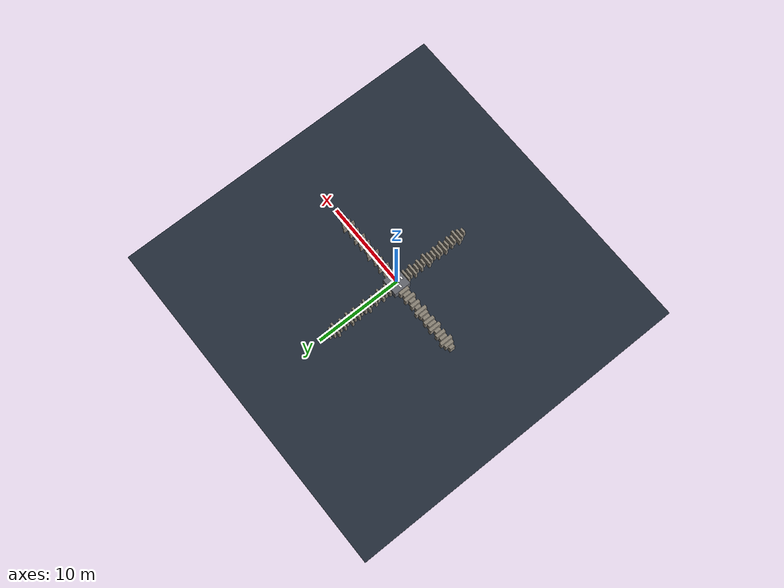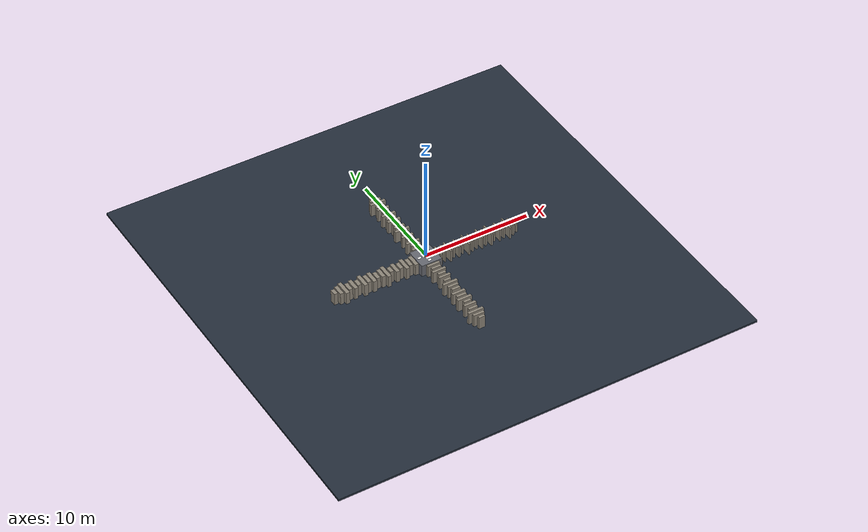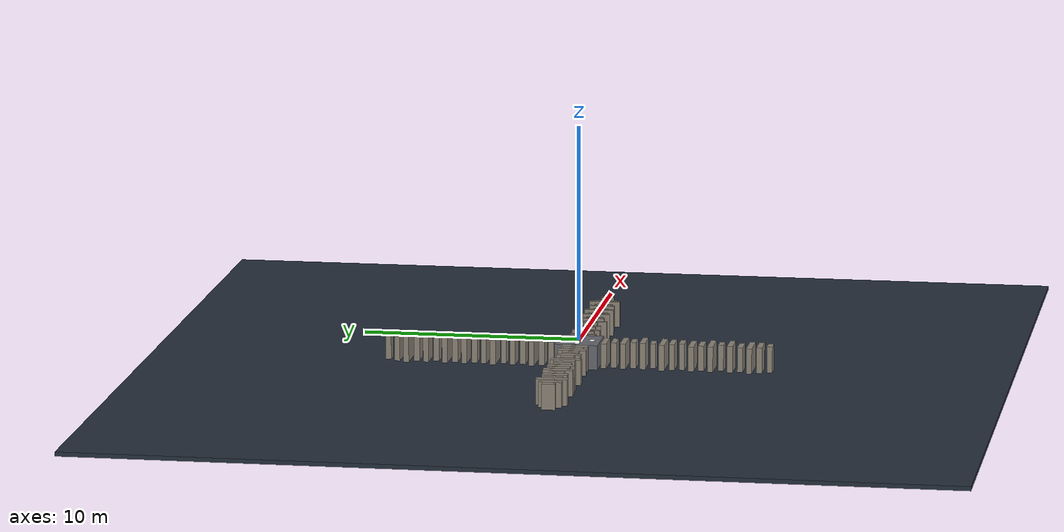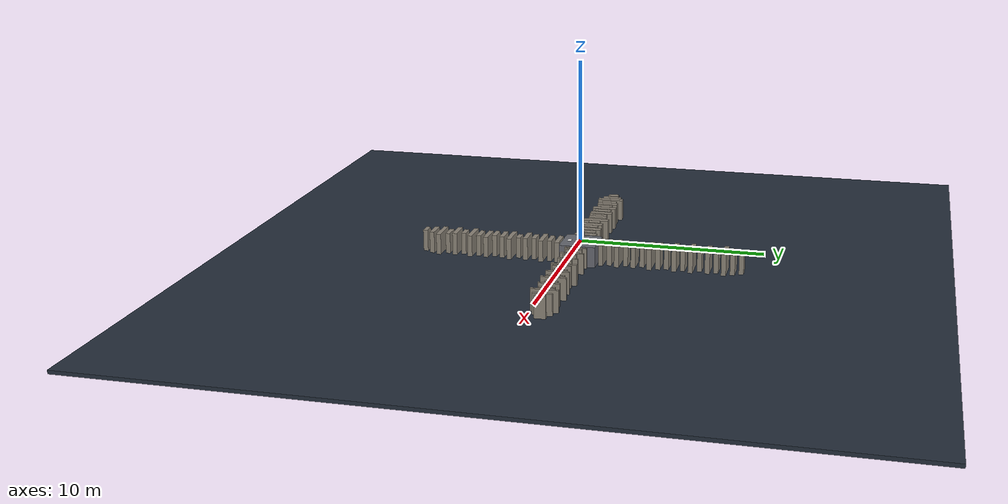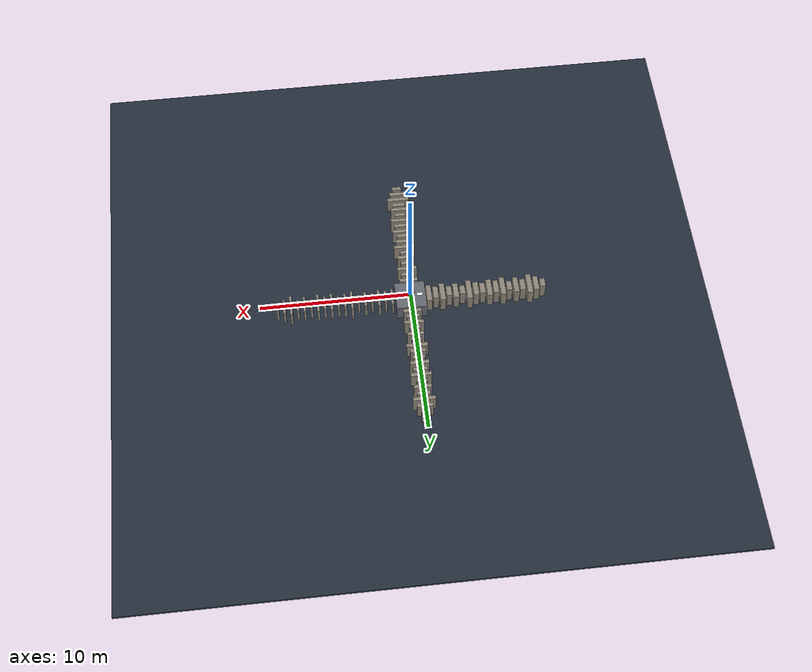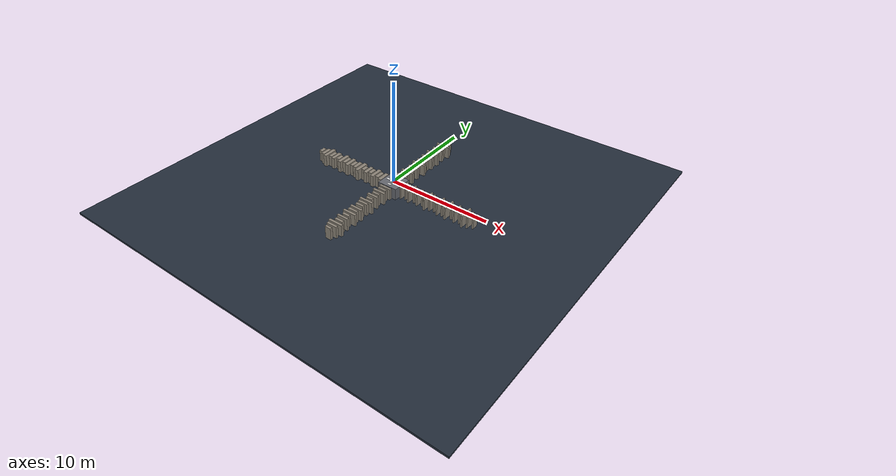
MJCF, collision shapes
<mujoco model="one_row_stones_cross_1_4_7_10">
  <include file="go2.xml"/>
  <statistic center="0 0 0.12" extent="1.35" />
  <visual>
    <headlight diffuse="0.6 0.6 0.6" ambient="0.3 0.3 0.3" specular="0 0 0" />
    <rgba haze="0.15 0.25 0.35 1" />
    <global azimuth="-130" elevation="-20" />
  </visual>
  <asset>
    <texture type="skybox" builtin="gradient" rgb1="0.3 0.5 0.7" rgb2="0 0 0" width="512" height="3072" />
    <texture type="2d" name="groundplane" builtin="checker" mark="edge" rgb1="0.18 0.22 0.28" rgb2="0.10 0.14 0.18" markrgb="0.8 0.8 0.8" width="300" height="300" />
    <material name="groundplane" texture="groundplane" texuniform="true" texrepeat="5 5" reflectance="0.0" />
    <texture name="tex_label_1" type="2d" file="./imgs/label_1.png" />
    <material name="mat_label_1" texture="tex_label_1" specular="0" shininess="0" emission="1" texrepeat="1 1" rgba="1 1 1 1" />
    <texture name="tex_label_7" type="2d" file="./imgs/label_7.png" />
    <material name="mat_label_7" texture="tex_label_7" specular="0" shininess="0" emission="1" texrepeat="1 1" rgba="1 1 1 1" />
    <texture name="tex_label_10" type="2d" file="./imgs/label_10.png" />
    <material name="mat_label_10" texture="tex_label_10" specular="0" shininess="0" emission="1" texrepeat="1 1" rgba="1 1 1 1" />
    <texture name="tex_label_4" type="2d" file="./imgs/label_4.png" />
    <material name="mat_label_4" texture="tex_label_4" specular="0" shininess="0" emission="1" texrepeat="1 1" rgba="1 1 1 1" />
  </asset>
  <worldbody>
    <light pos="0 0 1.5" dir="0 0 -1" directional="true" />

    <geom name="pit_floor" pos="0 0 -1.25" size="20 20 0.10" type="box" material="groundplane" />
    <geom name="hub" pos="0 0 -0.60" type="box" size="1.00 1.00 0.60" rgba="0.40 0.41 0.44 1" />

    <!-- neg_x direction, level 1, difficulty=0.1, one_row_stones -->
    <geom name="neg_x_stone_01" pos="-1.225 0 -0.5975" type="box" size="0.175 0.600 0.6025" rgba="0.55 0.52 0.47 1" />
    <geom name="neg_x_stone_02" pos="-1.675 0 -0.5900" type="box" size="0.175 0.450 0.6100" rgba="0.55 0.52 0.47 1" />
    <geom name="neg_x_stone_03" pos="-2.125 0 -0.5825" type="box" size="0.175 0.650 0.6175" rgba="0.55 0.52 0.47 1" />
    <geom name="neg_x_stone_04" pos="-2.575 0 -0.5750" type="box" size="0.175 0.375 0.6250" rgba="0.55 0.52 0.47 1" />
    <geom name="neg_x_stone_05" pos="-3.025 0 -0.5900" type="box" size="0.175 0.550 0.6100" rgba="0.55 0.52 0.47 1" />
    <geom name="neg_x_stone_06" pos="-3.475 0 -0.5825" type="box" size="0.175 0.325 0.6175" rgba="0.55 0.52 0.47 1" />
    <geom name="neg_x_stone_07" pos="-3.925 0 -0.5975" type="box" size="0.175 0.700 0.6025" rgba="0.55 0.52 0.47 1" />
    <geom name="neg_x_stone_08" pos="-4.375 0 -0.5750" type="box" size="0.175 0.500 0.6250" rgba="0.55 0.52 0.47 1" />
    <geom name="neg_x_stone_09" pos="-4.825 0 -0.5975" type="box" size="0.175 0.400 0.6025" rgba="0.55 0.52 0.47 1" />
    <geom name="neg_x_stone_10" pos="-5.275 0 -0.5900" type="box" size="0.175 0.625 0.6100" rgba="0.55 0.52 0.47 1" />
    <geom name="neg_x_stone_11" pos="-5.725 0 -0.5825" type="box" size="0.175 0.475 0.6175" rgba="0.55 0.52 0.47 1" />
    <geom name="neg_x_stone_12" pos="-6.175 0 -0.5750" type="box" size="0.175 0.675 0.6250" rgba="0.55 0.52 0.47 1" />
    <geom name="neg_x_stone_13" pos="-6.625 0 -0.5900" type="box" size="0.175 0.350 0.6100" rgba="0.55 0.52 0.47 1" />
    <geom name="neg_x_stone_14" pos="-7.075 0 -0.5825" type="box" size="0.175 0.575 0.6175" rgba="0.55 0.52 0.47 1" />
    <geom name="neg_x_stone_15" pos="-7.525 0 -0.5975" type="box" size="0.175 0.425 0.6025" rgba="0.55 0.52 0.47 1" />
    <geom name="neg_x_stone_16" pos="-7.975 0 -0.5750" type="box" size="0.175 0.725 0.6250" rgba="0.55 0.52 0.47 1" />
    <geom name="neg_x_stone_17" pos="-8.425 0 -0.5900" type="box" size="0.175 0.525 0.6100" rgba="0.55 0.52 0.47 1" />
    <geom name="neg_x_stone_18" pos="-8.875 0 -0.5825" type="box" size="0.175 0.300 0.6175" rgba="0.55 0.52 0.47 1" />
    <geom name="neg_x_label" pos="-0.62 0 0.002" type="box" size="0.18 0.10 0.0001" contype="0" conaffinity="0" group="1" material="mat_label_1" rgba="1 1 1 1" />

    <!-- pos_y direction, level 7, difficulty=0.7, one_row_stones -->
    <geom name="pos_y_stone_01" pos="0 1.225 -0.5975" type="box" size="0.600 0.125 0.6025" rgba="0.55 0.52 0.47 1" />
    <geom name="pos_y_stone_02" pos="0 1.675 -0.5675" type="box" size="0.450 0.125 0.6325" rgba="0.55 0.52 0.47 1" />
    <geom name="pos_y_stone_03" pos="0 2.125 -0.5975" type="box" size="0.650 0.125 0.6025" rgba="0.55 0.52 0.47 1" />
    <geom name="pos_y_stone_04" pos="0 2.575 -0.5675" type="box" size="0.375 0.125 0.6325" rgba="0.55 0.52 0.47 1" />
    <geom name="pos_y_stone_05" pos="0 3.025 -0.5975" type="box" size="0.550 0.125 0.6025" rgba="0.55 0.52 0.47 1" />
    <geom name="pos_y_stone_06" pos="0 3.475 -0.5675" type="box" size="0.325 0.125 0.6325" rgba="0.55 0.52 0.47 1" />
    <geom name="pos_y_stone_07" pos="0 3.925 -0.5975" type="box" size="0.700 0.125 0.6025" rgba="0.55 0.52 0.47 1" />
    <geom name="pos_y_stone_08" pos="0 4.375 -0.5675" type="box" size="0.500 0.125 0.6325" rgba="0.55 0.52 0.47 1" />
    <geom name="pos_y_stone_09" pos="0 4.825 -0.5975" type="box" size="0.400 0.125 0.6025" rgba="0.55 0.52 0.47 1" />
    <geom name="pos_y_stone_10" pos="0 5.275 -0.5675" type="box" size="0.625 0.125 0.6325" rgba="0.55 0.52 0.47 1" />
    <geom name="pos_y_stone_11" pos="0 5.725 -0.5975" type="box" size="0.475 0.125 0.6025" rgba="0.55 0.52 0.47 1" />
    <geom name="pos_y_stone_12" pos="0 6.175 -0.5675" type="box" size="0.675 0.125 0.6325" rgba="0.55 0.52 0.47 1" />
    <geom name="pos_y_stone_13" pos="0 6.625 -0.5975" type="box" size="0.350 0.125 0.6025" rgba="0.55 0.52 0.47 1" />
    <geom name="pos_y_stone_14" pos="0 7.075 -0.5675" type="box" size="0.575 0.125 0.6325" rgba="0.55 0.52 0.47 1" />
    <geom name="pos_y_stone_15" pos="0 7.525 -0.5975" type="box" size="0.425 0.125 0.6025" rgba="0.55 0.52 0.47 1" />
    <geom name="pos_y_stone_16" pos="0 7.975 -0.5675" type="box" size="0.725 0.125 0.6325" rgba="0.55 0.52 0.47 1" />
    <geom name="pos_y_stone_17" pos="0 8.425 -0.5975" type="box" size="0.525 0.125 0.6025" rgba="0.55 0.52 0.47 1" />
    <geom name="pos_y_stone_18" pos="0 8.875 -0.5675" type="box" size="0.300 0.125 0.6325" rgba="0.55 0.52 0.47 1" />
    <geom name="pos_y_label" pos="0 0.62 0.002" type="box" size="0.10 0.18 0.0001" quat="0.7071067811865476 0 0 0.7071067811865475" contype="0" conaffinity="0" group="1" material="mat_label_7" rgba="1 1 1 1" />

    <!-- pos_x direction, level 10, difficulty=0.9, one_row_stones -->
    <geom name="pos_x_stone_01" pos="1.225 0 -0.5975" type="box" size="0.075 0.600 0.6025" rgba="0.55 0.52 0.47 1" />
    <geom name="pos_x_stone_02" pos="1.675 0 -0.5675" type="box" size="0.075 0.450 0.6325" rgba="0.55 0.52 0.47 1" />
    <geom name="pos_x_stone_03" pos="2.125 0 -0.5975" type="box" size="0.075 0.650 0.6025" rgba="0.55 0.52 0.47 1" />
    <geom name="pos_x_stone_04" pos="2.575 0 -0.5675" type="box" size="0.075 0.375 0.6325" rgba="0.55 0.52 0.47 1" />
    <geom name="pos_x_stone_05" pos="3.025 0 -0.5975" type="box" size="0.075 0.550 0.6025" rgba="0.55 0.52 0.47 1" />
    <geom name="pos_x_stone_06" pos="3.475 0 -0.5675" type="box" size="0.075 0.325 0.6325" rgba="0.55 0.52 0.47 1" />
    <geom name="pos_x_stone_07" pos="3.925 0 -0.5975" type="box" size="0.075 0.700 0.6025" rgba="0.55 0.52 0.47 1" />
    <geom name="pos_x_stone_08" pos="4.375 0 -0.5675" type="box" size="0.075 0.500 0.6325" rgba="0.55 0.52 0.47 1" />
    <geom name="pos_x_stone_09" pos="4.825 0 -0.5975" type="box" size="0.075 0.400 0.6025" rgba="0.55 0.52 0.47 1" />
    <geom name="pos_x_stone_10" pos="5.275 0 -0.5675" type="box" size="0.075 0.625 0.6325" rgba="0.55 0.52 0.47 1" />
    <geom name="pos_x_stone_11" pos="5.725 0 -0.5975" type="box" size="0.075 0.475 0.6025" rgba="0.55 0.52 0.47 1" />
    <geom name="pos_x_stone_12" pos="6.175 0 -0.5675" type="box" size="0.075 0.675 0.6325" rgba="0.55 0.52 0.47 1" />
    <geom name="pos_x_stone_13" pos="6.625 0 -0.5975" type="box" size="0.075 0.350 0.6025" rgba="0.55 0.52 0.47 1" />
    <geom name="pos_x_stone_14" pos="7.075 0 -0.5675" type="box" size="0.075 0.575 0.6325" rgba="0.55 0.52 0.47 1" />
    <geom name="pos_x_stone_15" pos="7.525 0 -0.5975" type="box" size="0.075 0.425 0.6025" rgba="0.55 0.52 0.47 1" />
    <geom name="pos_x_stone_16" pos="7.975 0 -0.5675" type="box" size="0.075 0.725 0.6325" rgba="0.55 0.52 0.47 1" />
    <geom name="pos_x_stone_17" pos="8.425 0 -0.5975" type="box" size="0.075 0.525 0.6025" rgba="0.55 0.52 0.47 1" />
    <geom name="pos_x_stone_18" pos="8.875 0 -0.5675" type="box" size="0.075 0.300 0.6325" rgba="0.55 0.52 0.47 1" />
    <geom name="pos_x_label" pos="0.62 0 0.002" type="box" size="0.18 0.10 0.0001" contype="0" conaffinity="0" group="1" material="mat_label_10" rgba="1 1 1 1" />

    <!-- neg_y direction, level 4, difficulty=0.4, one_row_stones -->
    <geom name="neg_y_stone_01" pos="0 -1.225 -0.5975" type="box" size="0.600 0.125 0.6025" rgba="0.55 0.52 0.47 1" />
    <geom name="neg_y_stone_02" pos="0 -1.675 -0.5875" type="box" size="0.450 0.125 0.6125" rgba="0.55 0.52 0.47 1" />
    <geom name="neg_y_stone_03" pos="0 -2.125 -0.5775" type="box" size="0.650 0.125 0.6225" rgba="0.55 0.52 0.47 1" />
    <geom name="neg_y_stone_04" pos="0 -2.575 -0.5675" type="box" size="0.375 0.125 0.6325" rgba="0.55 0.52 0.47 1" />
    <geom name="neg_y_stone_05" pos="0 -3.025 -0.5575" type="box" size="0.550 0.125 0.6425" rgba="0.55 0.52 0.47 1" />
    <geom name="neg_y_stone_06" pos="0 -3.475 -0.5875" type="box" size="0.325 0.125 0.6125" rgba="0.55 0.52 0.47 1" />
    <geom name="neg_y_stone_07" pos="0 -3.925 -0.5775" type="box" size="0.700 0.125 0.6225" rgba="0.55 0.52 0.47 1" />
    <geom name="neg_y_stone_08" pos="0 -4.375 -0.5675" type="box" size="0.500 0.125 0.6325" rgba="0.55 0.52 0.47 1" />
    <geom name="neg_y_stone_09" pos="0 -4.825 -0.5575" type="box" size="0.400 0.125 0.6425" rgba="0.55 0.52 0.47 1" />
    <geom name="neg_y_stone_10" pos="0 -5.275 -0.5975" type="box" size="0.625 0.125 0.6025" rgba="0.55 0.52 0.47 1" />
    <geom name="neg_y_stone_11" pos="0 -5.725 -0.5875" type="box" size="0.475 0.125 0.6125" rgba="0.55 0.52 0.47 1" />
    <geom name="neg_y_stone_12" pos="0 -6.175 -0.5775" type="box" size="0.675 0.125 0.6225" rgba="0.55 0.52 0.47 1" />
    <geom name="neg_y_stone_13" pos="0 -6.625 -0.5675" type="box" size="0.350 0.125 0.6325" rgba="0.55 0.52 0.47 1" />
    <geom name="neg_y_stone_14" pos="0 -7.075 -0.5575" type="box" size="0.575 0.125 0.6425" rgba="0.55 0.52 0.47 1" />
    <geom name="neg_y_stone_15" pos="0 -7.525 -0.5975" type="box" size="0.425 0.125 0.6025" rgba="0.55 0.52 0.47 1" />
    <geom name="neg_y_stone_16" pos="0 -7.975 -0.5875" type="box" size="0.725 0.125 0.6125" rgba="0.55 0.52 0.47 1" />
    <geom name="neg_y_stone_17" pos="0 -8.425 -0.5775" type="box" size="0.525 0.125 0.6225" rgba="0.55 0.52 0.47 1" />
    <geom name="neg_y_stone_18" pos="0 -8.875 -0.5675" type="box" size="0.300 0.125 0.6325" rgba="0.55 0.52 0.47 1" />
    <geom name="neg_y_label" pos="0 -0.62 0.002" type="box" size="0.10 0.18 0.0001" quat="0.7071067811865476 0 0 -0.7071067811865475" contype="0" conaffinity="0" group="1" material="mat_label_4" rgba="1 1 1 1" />
  </worldbody>
</mujoco>

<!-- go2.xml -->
<mujoco model="go2">
  <compiler angle="radian" meshdir="assets" autolimits="true"/>

  <option cone="elliptic" impratio="100" timestep="0.02"/>

  <default>
    <default class="go2">
      <geom friction="0.6" margin="0.001" condim="1"/>
      <joint axis="0 1 0" damping="0.5" armature="0.01" frictionloss="0.2"/>
      <position forcerange="-23.7 23.7" kp="35"/>
      <default class="abduction">
        <joint axis="1 0 0" range="-1.0472 1.0472"/>
      </default>
      <default class="hip">
        <default class="front_hip">
          <joint range="-1.5708 3.4907"/>
        </default>
        <default class="back_hip">
          <joint range="-0.5236 4.5379"/>
        </default>
      </default>
      <default class="knee">
        <joint range="-2.7227 -0.83776"/>
        <position forcerange="-45.43 45.43"/>
      </default>
      <default class="visual">
        <geom type="mesh" contype="0" conaffinity="0" group="2"/>
      </default>
      <default class="collision">
        <geom group="3"  contype="1" conaffinity="2"/>
        <default class="foot">
          <geom size="0.022" pos="-0.002 0 -0.213" priority="1" condim="6"
            friction="0.4 0.02 0.01"/>
        </default>
      </default>
    </default>
  </default>

  <asset>
    <material name="metal" rgba=".9 .95 .95 1"/>
    <material name="black" rgba="0 0 0 1"/>
    <material name="white" rgba="1 1 1 1"/>
    <material name="gray" rgba="0.671705 0.692426 0.774270 1"/>

    <mesh file="base_0.obj"/>
    <mesh file="base_1.obj"/>
    <mesh file="base_2.obj"/>
    <mesh file="base_3.obj"/>
    <mesh file="base_4.obj"/>
    <mesh file="hip_0.obj"/>
    <mesh file="hip_1.obj"/>
    <mesh file="thigh_0.obj"/>
    <mesh file="thigh_1.obj"/>
    <mesh file="thigh_mirror_0.obj"/>
    <mesh file="thigh_mirror_1.obj"/>
    <mesh file="calf_0.obj"/>
    <mesh file="calf_1.obj"/>
    <mesh file="calf_mirror_0.obj"/>
    <mesh file="calf_mirror_1.obj"/>
    <mesh file="foot.obj"/>
  </asset>

  <worldbody>
    <body name="base" pos="0 0 0.445" childclass="go2">
      <inertial pos="0.021112 0 -0.005366" quat="-0.000543471 0.713435 -0.00173769 0.700719" mass="6.921"
        diaginertia="0.107027 0.0980771 0.0244531"/>
      <freejoint/>
      <geom mesh="base_0" material="black" class="visual"/>
      <geom mesh="base_1" material="black" class="visual"/>
      <geom mesh="base_2" material="black" class="visual"/>
      <geom mesh="base_3" material="white" class="visual"/>
      <geom mesh="base_4" material="gray" class="visual"/>
      <geom name="base1" size="0.1881 0.04675 0.057" type="box" class="collision"/>
      <geom name="base2" size="0.05 0.045" pos="0.285 0 0.01" type="cylinder" class="collision"/>
      <geom name="base3" size="0.047" pos="0.293 0 -0.06" class="collision"/>
      <site name="imu" pos="-0.02557 0 0.04232"/>
      <body name="FL_hip" pos="0.1934 0.0465 0">
        <inertial pos="-0.0054 0.00194 -0.000105" quat="0.497014 0.499245 0.505462 0.498237" mass="0.678"
          diaginertia="0.00088403 0.000596003 0.000479967"/>
        <joint name="FL_hip_joint" class="abduction"/>
        <geom mesh="hip_0" material="metal" class="visual"/>
        <geom mesh="hip_1" material="gray" class="visual"/>
        <geom name="FL_hip_geom" size="0.046 0.02" pos="0 0.08 0" quat="1 1 0 0" type="cylinder" class="collision"/>
        <body name="FL_thigh" pos="0 0.0955 0">
          <inertial pos="-0.00374 -0.0223 -0.0327" quat="0.829533 0.0847635 -0.0200632 0.551623" mass="1.152"
            diaginertia="0.00594973 0.00584149 0.000878787"/>
          <joint name="FL_thigh_joint" class="front_hip"/>
          <geom mesh="thigh_0" material="metal" class="visual"/>
          <geom mesh="thigh_1" material="gray" class="visual"/>
          <geom name="FL_thigh_geom" size="0.1065 0.01225 0.017" pos="0 0 -0.1065" quat="0.707107 0 0.707107 0" type="box" class="collision"/>
          <body name="FL_calf" pos="0 0 -0.213">
            <inertial pos="0.00629595 -0.000622121 -0.141417" quat="0.710672 0.00154099 -0.00450087 0.703508"
              mass="0.241352" diaginertia="0.0014901 0.00146356 5.31397e-05"/>
            <joint name="FL_calf_joint" class="knee"/>
            <geom mesh="calf_0" material="gray" class="visual"/>
            <geom mesh="calf_1" material="black" class="visual"/>
            <geom name="FL_calf_geom1" size="0.012 0.06" pos="0.008 0 -0.06" quat="0.994493 0 -0.104807 0" type="cylinder" class="collision"/>
            <geom name="FL_calf_geom2" size="0.011 0.0325" pos="0.02 0 -0.148" quat="0.999688 0 0.0249974 0" type="cylinder" class="collision"/>
            <geom pos="0 0 -0.213" mesh="foot" class="visual" material="black"/>
            <geom name="FL" class="foot"/>
          </body>
        </body>
      </body>
      <body name="FR_hip" pos="0.1934 -0.0465 0">
        <inertial pos="-0.0054 -0.00194 -0.000105" quat="0.498237 0.505462 0.499245 0.497014" mass="0.678"
          diaginertia="0.00088403 0.000596003 0.000479967"/>
        <joint name="FR_hip_joint" class="abduction"/>
        <geom mesh="hip_0" material="metal" class="visual" quat="4.63268e-05 1 0 0"/>
        <geom mesh="hip_1" material="gray" class="visual" quat="4.63268e-05 1 0 0"/>
        <geom name="FR_hip_geom" size="0.046 0.02" pos="0 -0.08 0" quat="0.707107 0.707107 0 0" type="cylinder" class="collision"/>
        <body name="FR_thigh" pos="0 -0.0955 0">
          <inertial pos="-0.00374 0.0223 -0.0327" quat="0.551623 -0.0200632 0.0847635 0.829533" mass="1.152"
            diaginertia="0.00594973 0.00584149 0.000878787"/>
          <joint name="FR_thigh_joint" class="front_hip"/>
          <geom mesh="thigh_mirror_0" material="metal" class="visual"/>
          <geom mesh="thigh_mirror_1" material="gray" class="visual"/>
          <geom name="FR_thigh_geom" size="0.1065 0.01225 0.017" pos="0 0 -0.1065" quat="0.707107 0 0.707107 0" type="box" class="collision"/>
          <body name="FR_calf" pos="0 0 -0.213">
            <inertial pos="0.00629595 0.000622121 -0.141417" quat="0.703508 -0.00450087 0.00154099 0.710672"
              mass="0.241352" diaginertia="0.0014901 0.00146356 5.31397e-05"/>
            <joint name="FR_calf_joint" class="knee"/>
            <geom mesh="calf_mirror_0" material="gray" class="visual"/>
            <geom mesh="calf_mirror_1" material="black" class="visual"/>
            <geom name="FR_calf_geom1" size="0.013 0.06" pos="0.01 0 -0.06" quat="0.995004 0 -0.0998334 0" type="cylinder" class="collision"/>
            <geom name="FR_calf_geom2" size="0.011 0.0325" pos="0.02 0 -0.148" quat="0.999688 0 0.0249974 0" type="cylinder" class="collision"/>
            <geom pos="0 0 -0.213" mesh="foot" class="visual" material="black"/>
            <geom name="FR" class="foot"/>
          </body>
        </body>
      </body>
      <body name="RL_hip" pos="-0.1934 0.0465 0">
        <inertial pos="0.0054 0.00194 -0.000105" quat="0.505462 0.498237 0.497014 0.499245" mass="0.678"
          diaginertia="0.00088403 0.000596003 0.000479967"/>
        <joint name="RL_hip_joint" class="abduction"/>
        <geom mesh="hip_0" material="metal" class="visual" quat="4.63268e-05 0 1 0"/>
        <geom mesh="hip_1" material="gray" class="visual" quat="4.63268e-05 0 1 0"/>
        <geom name="RL_hip_geom" size="0.046 0.02" pos="0 0.08 0" quat="0.707107 0.707107 0 0" type="cylinder" class="collision"/>
        <body name="RL_thigh" pos="0 0.0955 0">
          <inertial pos="-0.00374 -0.0223 -0.0327" quat="0.829533 0.0847635 -0.0200632 0.551623" mass="1.152"
            diaginertia="0.00594973 0.00584149 0.000878787"/>
          <joint name="RL_thigh_joint" class="back_hip"/>
          <geom mesh="thigh_0" material="metal" class="visual"/>
          <geom mesh="thigh_1" material="gray" class="visual"/>
          <geom name="RL_thigh_geom" size="0.1065 0.01225 0.017" pos="0 0 -0.1065" quat="0.707107 0 0.707107 0" type="box" class="collision"/>
          <body name="RL_calf" pos="0 0 -0.213">
            <inertial pos="0.00629595 -0.000622121 -0.141417" quat="0.710672 0.00154099 -0.00450087 0.703508"
              mass="0.241352" diaginertia="0.0014901 0.00146356 5.31397e-05"/>
            <joint name="RL_calf_joint" class="knee"/>
            <geom mesh="calf_0" material="gray" class="visual"/>
            <geom mesh="calf_1" material="black" class="visual"/>
            <geom name="RL_calf_geom1" size="0.013 0.06" pos="0.01 0 -0.06" quat="0.995004 0 -0.0998334 0" type="cylinder" class="collision"/>
            <geom name="RL_calf_geom2" size="0.011 0.0325" pos="0.02 0 -0.148" quat="0.999688 0 0.0249974 0" type="cylinder" class="collision"/>
            <geom pos="0 0 -0.213" mesh="foot" class="visual" material="black"/>
            <geom name="RL" class="foot"/>
          </body>
        </body>
      </body>
      <body name="RR_hip" pos="-0.1934 -0.0465 0">
        <inertial pos="0.0054 -0.00194 -0.000105" quat="0.499245 0.497014 0.498237 0.505462" mass="0.678"
          diaginertia="0.00088403 0.000596003 0.000479967"/>
        <joint name="RR_hip_joint" class="abduction"/>
        <geom mesh="hip_0" material="metal" class="visual" quat="2.14617e-09 4.63268e-05 4.63268e-05 -1"/>
        <geom mesh="hip_1" material="gray" class="visual" quat="2.14617e-09 4.63268e-05 4.63268e-05 -1"/>
        <geom name="RR_hip_geom" size="0.046 0.02" pos="0 -0.08 0" quat="0.707107 0.707107 0 0" type="cylinder" class="collision"/>
        <body name="RR_thigh" pos="0 -0.0955 0">
          <inertial pos="-0.00374 0.0223 -0.0327" quat="0.551623 -0.0200632 0.0847635 0.829533" mass="1.152"
            diaginertia="0.00594973 0.00584149 0.000878787"/>
          <joint name="RR_thigh_joint" class="back_hip"/>
          <geom mesh="thigh_mirror_0" material="metal" class="visual"/>
          <geom mesh="thigh_mirror_1" material="gray" class="visual"/>
          <geom name="RR_thigh_geom" size="0.1065 0.01225 0.017" pos="0 0 -0.1065" quat="0.707107 0 0.707107 0" type="box" class="collision"/>
          <body name="RR_calf" pos="0 0 -0.213">
            <inertial pos="0.00629595 0.000622121 -0.141417" quat="0.703508 -0.00450087 0.00154099 0.710672"
              mass="0.241352" diaginertia="0.0014901 0.00146356 5.31397e-05"/>
            <joint name="RR_calf_joint" class="knee"/>
            <geom mesh="calf_mirror_0" material="gray" class="visual"/>
            <geom mesh="calf_mirror_1" material="black" class="visual"/>
            <geom name="RR_calf_geom1" size="0.013 0.06" pos="0.01 0 -0.06" quat="0.995004 0 -0.0998334 0" type="cylinder" class="collision"/>
            <geom name="RR_calf_geom2" size="0.011 0.0325" pos="0.02 0 -0.148" quat="0.999688 0 0.0249974 0" type="cylinder" class="collision"/>
            <geom pos="0 0 -0.213" mesh="foot" class="visual" material="black"/>
            <geom name="RR" class="foot"/>
          </body>
        </body>
      </body>
    </body>
  </worldbody>

  <actuator>
    <position class="abduction" name="FR_hip" joint="FR_hip_joint"/>
    <position class="hip" name="FR_thigh" joint="FR_thigh_joint"/>
    <position class="knee" name="FR_calf" joint="FR_calf_joint"/>
    <position class="abduction" name="FL_hip" joint="FL_hip_joint"/>
    <position class="hip" name="FL_thigh" joint="FL_thigh_joint"/>
    <position class="knee" name="FL_calf" joint="FL_calf_joint"/>
    <position class="abduction" name="RR_hip" joint="RR_hip_joint"/>
    <position class="hip" name="RR_thigh" joint="RR_thigh_joint"/>
    <position class="knee" name="RR_calf" joint="RR_calf_joint"/>
    <position class="abduction" name="RL_hip" joint="RL_hip_joint"/>
    <position class="hip" name="RL_thigh" joint="RL_thigh_joint"/>
    <position class="knee" name="RL_calf" joint="RL_calf_joint"/>
  </actuator>

  <sensor>

    <gyro site="imu" name="gyro"/>
    <accelerometer site="imu" name="accelerometer"/>
    <velocimeter site="imu" name="local_linvel"/>
    <framezaxis objtype="site" objname="imu" name="upvector"/>

    <framepos objtype="site" objname="imu" name="global_position"/>
    <framelinvel objtype="site" objname="imu" name="global_linvel"/>
    <frameangvel objtype="site" objname="imu" name="global_angvel"/>

    <framepos objtype="geom" objname="FR" name="FR_pos"/>
    <framepos objtype="geom" objname="FL" name="FL_pos"/>
    <framepos objtype="geom" objname="RR" name="RR_pos"/>
    <framepos objtype="geom" objname="RL" name="RL_pos"/>

    <framelinvel objtype="geom" objname="FR" name="FR_vel"/>
    <framelinvel objtype="geom" objname="FL" name="FL_vel"/>
    <framelinvel objtype="geom" objname="RR" name="RR_vel"/>
    <framelinvel objtype="geom" objname="RL" name="RL_vel"/>
  </sensor>

  <keyframe>
    <key name="home" qpos="
        0 0 0.3  1 0 0 0
        0 0.8 -1.5
        0 0.8 -1.5
        0 1 -1.5
        0 1 -1.5"
      ctrl="
        0 0.8 -1.5
        0 0.8 -1.5
        0 1 -1.5
        0 1 -1.5"/>
  </keyframe>

</mujoco>
